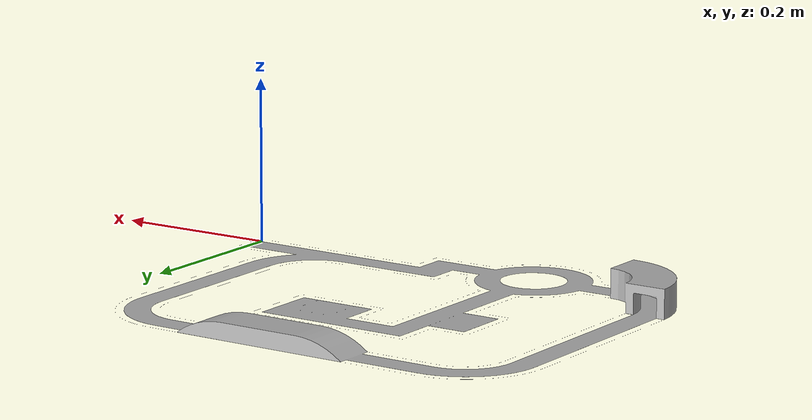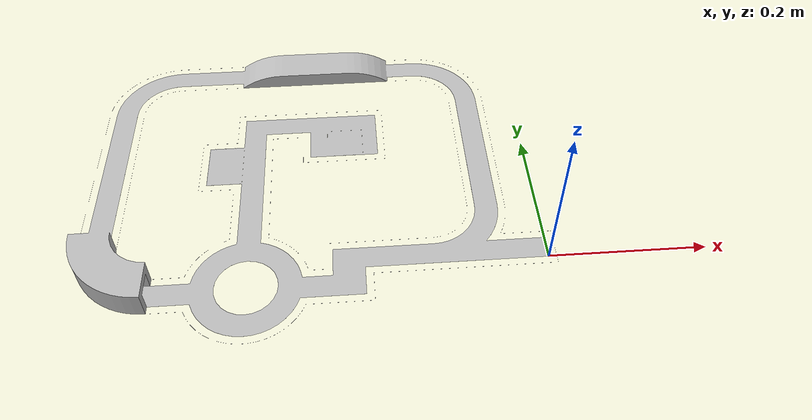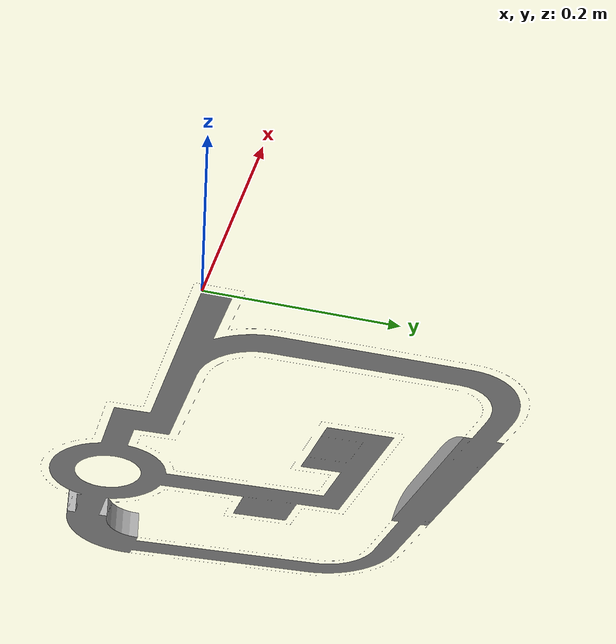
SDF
<?xml version="1.0" ?>
<sdf version="1.6">
  <model name="my_custom_map">
    <!-- MUST BE TRUE: Prevents the map from falling through the void -->
    <static>true</static>

    <link name="link">
      <collision name="collision">
        <pose>-0.2908 0.1507 0.0175 0 0 0</pose>
        <geometry>
          <box>
            <size>0.602 0.499 0.035</size>
          </box>
        </geometry>
      </collision>

      <visual name="visual">
        <geometry>
          <mesh>
            <uri>model://my_custom_map/meshes/nxgv_map.obj</uri>
            <scale>0.001 0.001 0.001</scale>
          </mesh>
        </geometry>
      </visual>
    </link>
  </model>
</sdf>
